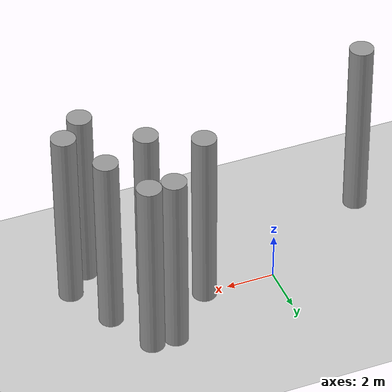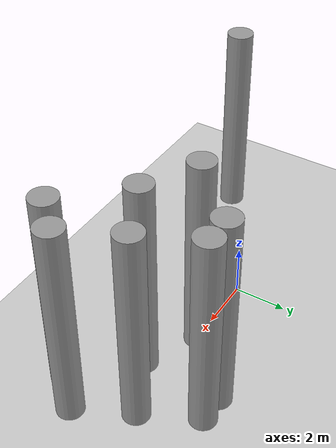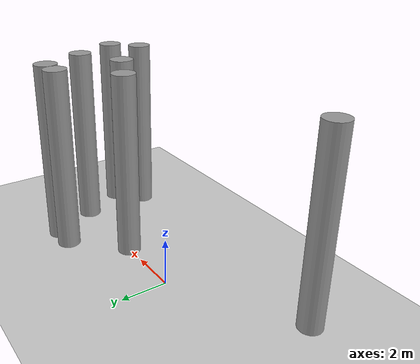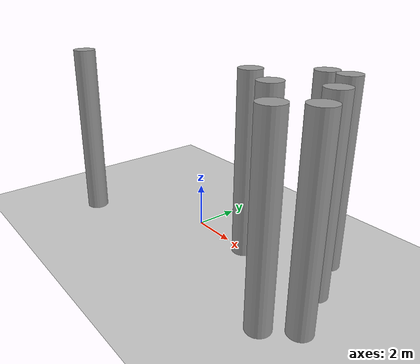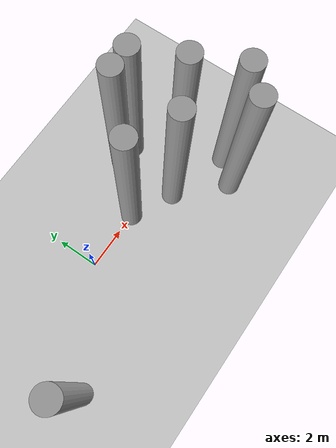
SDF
<?xml version="1.0" ?>
<sdf version="1.4">
  <world name="default">
    <include>
      <uri>model://ground_plane</uri>
      <color>0 0 0 </color>
    </include>
    <include>
      <uri>model://sun</uri>
    </include>

    <!-- long wall left -->

    <model name="cyl" static="true">
      <pose>3 0 4 0 -0 0</pose>

      <static>true</static>

      <link name="cyl">
        <visual name="cyl">
          <geometry>
            <cylinder>
              <radius>0.5</radius>
              <length>8</length>
            </cylinder>
          </geometry>
          <material>
            <script>
              <name>Gazebo/Grey</name>
              <uri>file://media/materials/scripts/gazebo.material</uri>
            </script>
          </material>
        </visual>
        <collision name="cyl_collision">
          <geometry>
            <cylinder>
              <radius>0.5</radius>
              <length>1</length>
            </cylinder>
          </geometry>
        </collision>
      </link>
    </model>

    <model name="cyl2" static="true">
      <pose>5 2 4 0 -0 0</pose>

      <static>true</static>

      <link name="cyl2">
        <visual name="cyl2">
          <geometry>
            <cylinder>
              <radius>0.5</radius>
              <length>8</length>
            </cylinder>
          </geometry>
          <material>
            <script>
              <name>Gazebo/Grey</name>
              <uri>file://media/materials/scripts/gazebo.material</uri>
            </script>
          </material>
        </visual>
        <collision name="cyl2_collision">
          <geometry>
            <cylinder>
              <radius>0.5</radius>
              <length>1</length>
            </cylinder>
          </geometry>
        </collision>
      </link>
    </model>

    <model name="cyl3" static="true">
      <pose>5 -1 4 0 -0 0</pose>

      <static>true</static>

      <link name="cyl3">
        <visual name="cyl3">
          <geometry>
            <cylinder>
              <radius>0.5</radius>
              <length>8</length>
            </cylinder>
          </geometry>
          <material>
            <script>
              <name>Gazebo/Grey</name>
              <uri>file://media/materials/scripts/gazebo.material</uri>
            </script>
          </material>
        </visual>
        <collision name="cyl3_collision">
          <geometry>
            <cylinder>
              <radius>0.5</radius>
              <length>1</length>
            </cylinder>
          </geometry>
        </collision>
      </link>
    </model>

    <model name="cyl4" static="true">
      <pose>6 2 4 0 -0 0</pose>

      <static>true</static>

      <link name="cyl4">
        <visual name="cyl4">
          <geometry>
            <cylinder>
              <radius>0.5</radius>
              <length>8</length>
            </cylinder>
          </geometry>
          <material>
            <script>
              <name>Gazebo/Grey</name>
              <uri>file://media/materials/scripts/gazebo.material</uri>
            </script>
          </material>
        </visual>
        <collision name="cyl4_collision">
          <geometry>
            <cylinder>
              <radius>0.5</radius>
              <length>1</length>
            </cylinder>
          </geometry>
        </collision>
      </link>
    </model>

    <model name="cyl5" static="true">
      <pose>-5 -3 4 0 -0 0</pose>

      <static>true</static>

      <link name="cyl5">
        <visual name="cyl5">
          <geometry>
            <cylinder>
              <radius>0.5</radius>
              <length>8</length>
            </cylinder>
          </geometry>
          <material>
            <script>
              <name>Gazebo/Grey</name>
              <uri>file://media/materials/scripts/gazebo.material</uri>
            </script>
          </material>
        </visual>
        <collision name="cyl5_collision">
          <geometry>
            <cylinder>
              <radius>0.5</radius>
              <length>1</length>
            </cylinder>
          </geometry>
        </collision>
      </link>
    </model>

    <model name="cyl6" static="true">
      <pose>7 -3 4 0 -0 0</pose>

      <static>true</static>

      <link name="cyl6">
        <visual name="cyl6">
          <geometry>
            <cylinder>
              <radius>0.5</radius>
              <length>8</length>
            </cylinder>
          </geometry>
          <material>
            <script>
              <name>Gazebo/Grey</name>
              <uri>file://media/materials/scripts/gazebo.material</uri>
            </script>
          </material>
        </visual>
        <collision name="cyl6_collision">
          <geometry>
            <cylinder>
              <radius>0.5</radius>
              <length>1</length>
            </cylinder>
          </geometry>
        </collision>
      </link>
    </model>

    <model name="cyl7" static="true">
      <pose>7 0 4 0 -0 0</pose>

      <static>true</static>

      <link name="cyl7">
        <visual name="cyl7">
          <geometry>
            <cylinder>
              <radius>0.5</radius>
              <length>8</length>
            </cylinder>
          </geometry>
          <material>
            <script>
              <name>Gazebo/Grey</name>
              <uri>file://media/materials/scripts/gazebo.material</uri>
            </script>
          </material>
        </visual>
        <collision name="cyl7_collision">
          <geometry>
            <cylinder>
              <radius>0.5</radius>
              <length>1</length>
            </cylinder>
          </geometry>
        </collision>
      </link>
    </model>

    <model name="cyl8" static="true">
      <pose>8 -2 4 0 -0 0</pose>

      <static>true</static>

      <link name="cyl8">
        <visual name="cyl8">
          <geometry>
            <cylinder>
              <radius>0.5</radius>
              <length>8</length>
            </cylinder>
          </geometry>
          <material>
            <script>
              <name>Gazebo/Grey</name>
              <uri>file://media/materials/scripts/gazebo.material</uri>
            </script>
          </material>
        </visual>
        <collision name="cyl8_collision">
          <geometry>
            <cylinder>
              <radius>0.5</radius>
              <length>1</length>
            </cylinder>
          </geometry>
        </collision>
      </link>
    </model>

    <!-- Only require one ROS interface plugin per world, as any other plugin can connect a Gazebo
        topic to a ROS topic (or vise versa). -->
    <plugin name="ros_interface_plugin" filename="librotors_gazebo_ros_interface_plugin.so"></plugin>

    <spherical_coordinates>
      <surface_model>EARTH_WGS84</surface_model>
      <latitude_deg>47.3667</latitude_deg>
      <longitude_deg>8.5500</longitude_deg>
      <elevation>500.0</elevation>
      <heading_deg>0</heading_deg>
    </spherical_coordinates>
    <physics type='ode'>
      <ode>
        <solver>
          <type>quick</type>
          <iters>1000</iters>
          <sor>1.3</sor>
        </solver>
        <constraints>
          <cfm>0</cfm>
          <erp>0.2</erp>
          <contact_max_correcting_vel>100</contact_max_correcting_vel>
          <contact_surface_layer>0.001</contact_surface_layer>
        </constraints>
      </ode>
      <max_step_size>0.01</max_step_size>
      <real_time_factor>1</real_time_factor>
      <real_time_update_rate>100</real_time_update_rate>
      <gravity>0 0 -9.8</gravity>
    </physics>
  </world>
</sdf>
